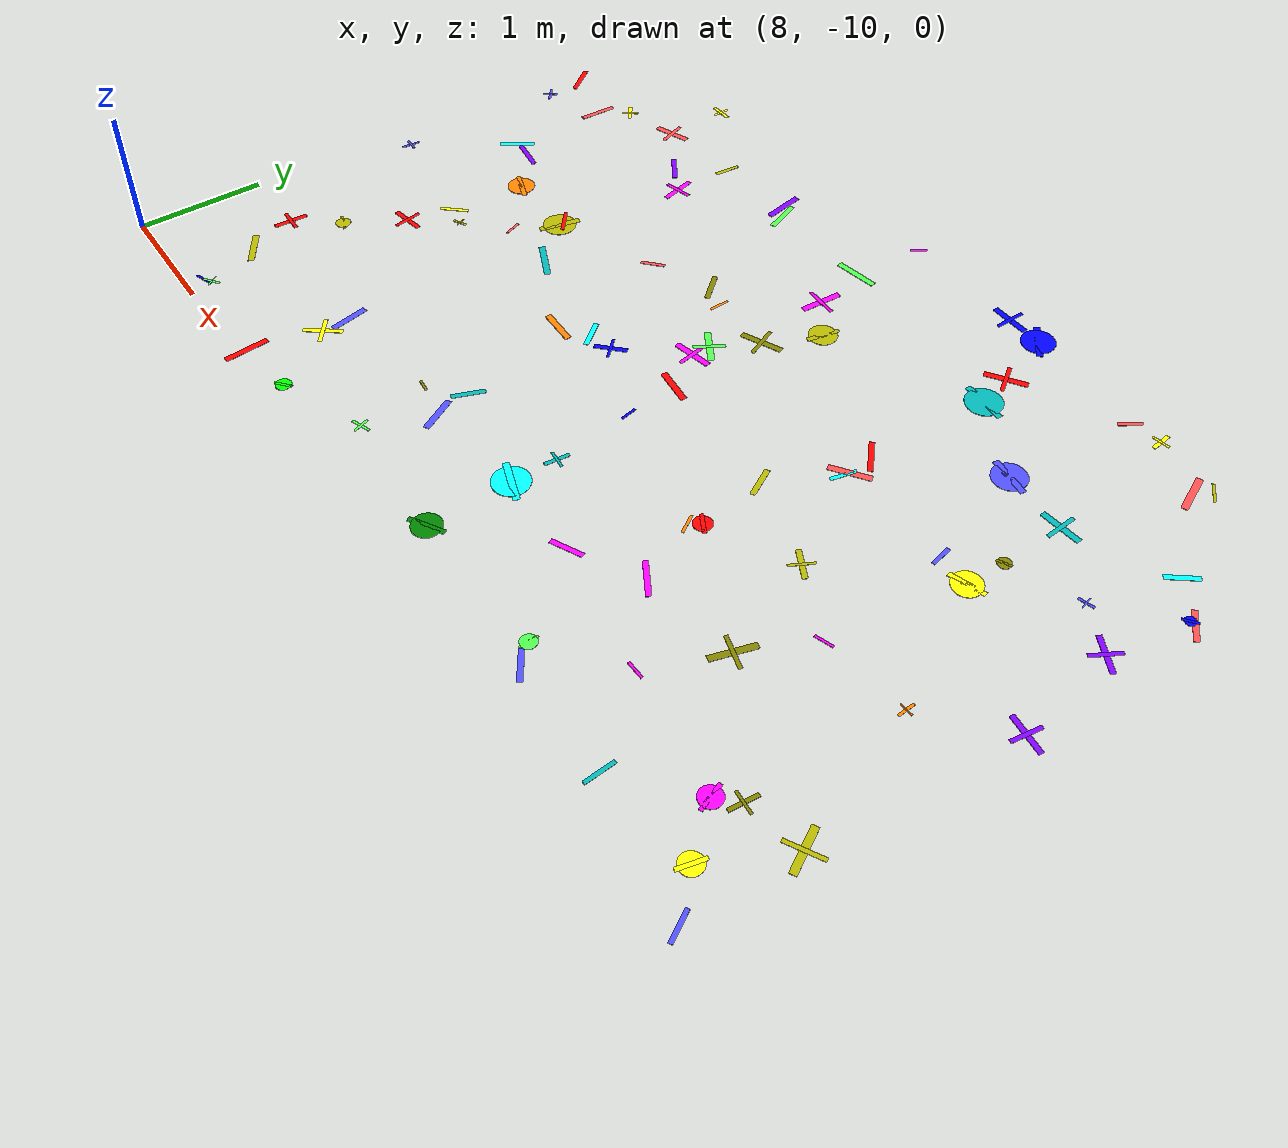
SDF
<sdf version="1.6">
 <world name="default">
  <model name="letter_H_1707">
   <static>true</static>
   <pose>8.22 -7.71 0.011 0 0 4.648</pose>
   <link name="link">
    <visual name="visual">
     <geometry><box><size>0.15 0.02 0.002</size></box></geometry>
     <material>
      <ambient>0.3 0.3 1.0 1</ambient>
      <diffuse>0.3 0.3 1.0 1</diffuse>
      <specular>0.1 0.1 0.1 1</specular>
     </material>
    </visual>
    <visual name="visual2">
     <pose>0 0 0.001 0 0 1.57</pose>
     <geometry><box><size>0.12 0.02 0.001</size></box></geometry>
     <material><ambient>0.3 0.3 1.0 1</ambient><diffuse>0.3 0.3 1.0 1</diffuse></material>
    </visual>
   </link>
  </model>
  <model name="letter_Z_1712">
   <static>true</static>
   <pose>8.19 -5.99 0.006 0 0 5.359</pose>
   <link name="link">
    <visual name="visual">
     <geometry><box><size>0.30 0.04 0.002</size></box></geometry>
     <material>
      <ambient>1.0 0.0 0.0 1</ambient>
      <diffuse>1.0 0.0 0.0 1</diffuse>
      <specular>0.1 0.1 0.1 1</specular>
     </material>
    </visual>
   </link>
  </model>
  <model name="letter_L_1713">
   <static>true</static>
   <pose>8.23 -6.33 0.005 0 0 2.461</pose>
   <link name="link">
    <visual name="visual">
     <geometry><box><size>0.15 0.02 0.002</size></box></geometry>
     <material>
      <ambient>0.3 0.3 1.0 1</ambient>
      <diffuse>0.3 0.3 1.0 1</diffuse>
      <specular>0.1 0.1 0.1 1</specular>
     </material>
    </visual>
    <visual name="visual2">
     <pose>0 0 0.001 0 0 1.57</pose>
     <geometry><box><size>0.12 0.02 0.001</size></box></geometry>
     <material><ambient>0.3 0.3 1.0 1</ambient><diffuse>0.3 0.3 1.0 1</diffuse></material>
    </visual>
   </link>
  </model>
  <model name="letter_R_1781">
   <static>true</static>
   <pose>8.89 -9.86 0.006 0 0 0.331</pose>
   <link name="link">
    <visual name="visual">
     <geometry><box><size>0.16 0.02 0.002</size></box></geometry>
     <material>
      <ambient>0.0 0.0 1.0 1</ambient>
      <diffuse>0.0 0.0 1.0 1</diffuse>
      <specular>0.1 0.1 0.1 1</specular>
     </material>
    </visual>
   </link>
  </model>
  <model name="letter_E_1782">
   <static>true</static>
   <pose>8.94 -9.82 0.006 0 0 3.768</pose>
   <link name="link">
    <visual name="visual">
     <geometry><box><size>0.14 0.02 0.002</size></box></geometry>
     <material>
      <ambient>0.3 1.0 0.3 1</ambient>
      <diffuse>0.3 1.0 0.3 1</diffuse>
      <specular>0.1 0.1 0.1 1</specular>
     </material>
    </visual>
    <visual name="visual2">
     <pose>0 0 0.001 0 0 1.57</pose>
     <geometry><box><size>0.11 0.01 0.001</size></box></geometry>
     <material><ambient>0.3 1.0 0.3 1</ambient><diffuse>0.3 1.0 0.3 1</diffuse></material>
    </visual>
   </link>
  </model>
  <model name="letter_L_1783">
   <static>true</static>
   <pose>8.60 -9.00 0.008 0 0 4.674</pose>
   <link name="link">
    <visual name="visual">
     <geometry><box><size>0.27 0.04 0.002</size></box></geometry>
     <material>
      <ambient>1.0 0.0 0.0 1</ambient>
      <diffuse>1.0 0.0 0.0 1</diffuse>
      <specular>0.1 0.1 0.1 1</specular>
     </material>
    </visual>
    <visual name="visual2">
     <pose>0 0 0.001 0 0 1.57</pose>
     <geometry><box><size>0.21 0.03 0.001</size></box></geometry>
     <material><ambient>1.0 0.0 0.0 1</ambient><diffuse>1.0 0.0 0.0 1</diffuse></material>
    </visual>
   </link>
  </model>
  <model name="letter_K_1784">
   <static>true</static>
   <pose>8.75 -9.39 0.010 0 0 2.585</pose>
   <link name="link">
    <visual name="visual">
     <geometry><box><size>0.32 0.05 0.002</size></box></geometry>
     <material>
      <ambient>0.7 0.7 0.0 1</ambient>
      <diffuse>0.7 0.7 0.0 1</diffuse>
      <specular>0.1 0.1 0.1 1</specular>
     </material>
    </visual>
   </link>
  </model>
  <model name="letter_O_1785">
   <static>true</static>
   <pose>8.86 -8.67 0.010 0 0 5.957</pose>
   <link name="link">
    <visual name="visual">
     <geometry><box><size>0.16 0.02 0.002</size></box></geometry>
     <material>
      <ambient>0.7 0.7 0.0 1</ambient>
      <diffuse>0.7 0.7 0.0 1</diffuse>
      <specular>0.1 0.1 0.1 1</specular>
     </material>
    </visual>
    <visual name="visual2">
     <geometry><cylinder><radius>0.06</radius><length>0.002</length></cylinder></geometry>
     <material><ambient>0.7 0.7 0.0 1</ambient><diffuse>0.7 0.7 0.0 1</diffuse></material>
    </visual>
   </link>
  </model>
  <model name="letter_E_1786">
   <static>true</static>
   <pose>9.11 -8.23 0.005 0 0 0.161</pose>
   <link name="link">
    <visual name="visual">
     <geometry><box><size>0.28 0.04 0.002</size></box></geometry>
     <material>
      <ambient>1.0 0.0 0.0 1</ambient>
      <diffuse>1.0 0.0 0.0 1</diffuse>
      <specular>0.1 0.1 0.1 1</specular>
     </material>
    </visual>
    <visual name="visual2">
     <pose>0 0 0.001 0 0 1.57</pose>
     <geometry><box><size>0.23 0.03 0.001</size></box></geometry>
     <material><ambient>1.0 0.0 0.0 1</ambient><diffuse>1.0 0.0 0.0 1</diffuse></material>
    </visual>
   </link>
  </model>
  <model name="letter_K_1787">
   <static>true</static>
   <pose>9.21 -7.86 0.011 0 0 3.971</pose>
   <link name="link">
    <visual name="visual">
     <geometry><box><size>0.23 0.03 0.002</size></box></geometry>
     <material>
      <ambient>1.0 1.0 0.0 1</ambient>
      <diffuse>1.0 1.0 0.0 1</diffuse>
      <specular>0.1 0.1 0.1 1</specular>
     </material>
    </visual>
   </link>
  </model>
  <model name="letter_A_1788">
   <static>true</static>
   <pose>9.39 -7.91 0.013 0 0 3.597</pose>
   <link name="link">
    <visual name="visual">
     <geometry><box><size>0.12 0.02 0.002</size></box></geometry>
     <material>
      <ambient>0.7 0.7 0.0 1</ambient>
      <diffuse>0.7 0.7 0.0 1</diffuse>
      <specular>0.1 0.1 0.1 1</specular>
     </material>
    </visual>
    <visual name="visual2">
     <pose>0 0 0.001 0 0 1.57</pose>
     <geometry><box><size>0.09 0.01 0.001</size></box></geometry>
     <material><ambient>0.7 0.7 0.0 1</ambient><diffuse>0.7 0.7 0.0 1</diffuse></material>
    </visual>
   </link>
  </model>
  <model name="letter_V_1789">
   <static>true</static>
   <pose>8.72 -6.97 0.011 0 0 0.968</pose>
   <link name="link">
    <visual name="visual">
     <geometry><box><size>0.29 0.04 0.002</size></box></geometry>
     <material>
      <ambient>0.0 1.0 1.0 1</ambient>
      <diffuse>0.0 1.0 1.0 1</diffuse>
      <specular>0.1 0.1 0.1 1</specular>
     </material>
    </visual>
   </link>
  </model>
  <model name="letter_Z_1790">
   <static>true</static>
   <pose>8.90 -6.98 0.009 0 0 6.127</pose>
   <link name="link">
    <visual name="visual">
     <geometry><box><size>0.29 0.04 0.002</size></box></geometry>
     <material>
      <ambient>0.5 0.0 1.0 1</ambient>
      <diffuse>0.5 0.0 1.0 1</diffuse>
      <specular>0.1 0.1 0.1 1</specular>
     </material>
    </visual>
   </link>
  </model>
  <model name="letter_G_1791">
   <static>true</static>
   <pose>9.24 -7.25 0.007 0 0 5.942</pose>
   <link name="link">
    <visual name="visual">
     <geometry><box><size>0.26 0.04 0.002</size></box></geometry>
     <material>
      <ambient>1.0 0.5 0.0 1</ambient>
      <diffuse>1.0 0.5 0.0 1</diffuse>
      <specular>0.1 0.1 0.1 1</specular>
     </material>
    </visual>
    <visual name="visual2">
     <geometry><cylinder><radius>0.11</radius><length>0.002</length></cylinder></geometry>
     <material><ambient>1.0 0.5 0.0 1</ambient><diffuse>1.0 0.5 0.0 1</diffuse></material>
    </visual>
   </link>
  </model>
  <model name="letter_H_1792">
   <static>true</static>
   <pose>8.88 -5.93 0.013 0 0 2.502</pose>
   <link name="link">
    <visual name="visual">
     <geometry><box><size>0.17 0.03 0.002</size></box></geometry>
     <material>
      <ambient>1.0 1.0 0.0 1</ambient>
      <diffuse>1.0 1.0 0.0 1</diffuse>
      <specular>0.1 0.1 0.1 1</specular>
     </material>
    </visual>
    <visual name="visual2">
     <pose>0 0 0.001 0 0 1.57</pose>
     <geometry><box><size>0.14 0.02 0.001</size></box></geometry>
     <material><ambient>1.0 1.0 0.0 1</ambient><diffuse>1.0 1.0 0.0 1</diffuse></material>
    </visual>
   </link>
  </model>
  <model name="letter_N_1793">
   <static>true</static>
   <pose>8.71 -6.15 0.007 0 0 1.536</pose>
   <link name="link">
    <visual name="visual">
     <geometry><box><size>0.30 0.04 0.002</size></box></geometry>
     <material>
      <ambient>1.0 0.3 0.3 1</ambient>
      <diffuse>1.0 0.3 0.3 1</diffuse>
      <specular>0.1 0.1 0.1 1</specular>
     </material>
    </visual>
   </link>
  </model>
  <model name="letter_H_1794">
   <static>true</static>
   <pose>9.34 -5.81 0.013 0 0 3.485</pose>
   <link name="link">
    <visual name="visual">
     <geometry><box><size>0.30 0.05 0.002</size></box></geometry>
     <material>
      <ambient>1.0 0.3 0.3 1</ambient>
      <diffuse>1.0 0.3 0.3 1</diffuse>
      <specular>0.1 0.1 0.1 1</specular>
     </material>
    </visual>
    <visual name="visual2">
     <pose>0 0 0.001 0 0 1.57</pose>
     <geometry><box><size>0.24 0.03 0.001</size></box></geometry>
     <material><ambient>1.0 0.3 0.3 1</ambient><diffuse>1.0 0.3 0.3 1</diffuse></material>
    </visual>
   </link>
  </model>
  <model name="letter_T_1796">
   <static>true</static>
   <pose>9.31 -5.27 0.005 0 0 3.167</pose>
   <link name="link">
    <visual name="visual">
     <geometry><box><size>0.18 0.03 0.002</size></box></geometry>
     <material>
      <ambient>1.0 1.0 0.0 1</ambient>
      <diffuse>1.0 1.0 0.0 1</diffuse>
      <specular>0.1 0.1 0.1 1</specular>
     </material>
    </visual>
    <visual name="visual2">
     <pose>0 0 0.001 0 0 1.57</pose>
     <geometry><box><size>0.14 0.02 0.001</size></box></geometry>
     <material><ambient>1.0 1.0 0.0 1</ambient><diffuse>1.0 1.0 0.0 1</diffuse></material>
    </visual>
   </link>
  </model>
  <model name="letter_C_1865">
   <static>true</static>
   <pose>10.30 -9.87 0.012 0 0 0.711</pose>
   <link name="link">
    <visual name="visual">
     <geometry><box><size>0.14 0.02 0.002</size></box></geometry>
     <material>
      <ambient>0.0 1.0 0.0 1</ambient>
      <diffuse>0.0 1.0 0.0 1</diffuse>
      <specular>0.1 0.1 0.1 1</specular>
     </material>
    </visual>
    <visual name="visual2">
     <geometry><cylinder><radius>0.06</radius><length>0.002</length></cylinder></geometry>
     <material><ambient>0.0 1.0 0.0 1</ambient><diffuse>0.0 1.0 0.0 1</diffuse></material>
    </visual>
   </link>
  </model>
  <model name="letter_W_1867">
   <static>true</static>
   <pose>9.81 -9.93 0.006 0 0 1.652</pose>
   <link name="link">
    <visual name="visual">
     <geometry><box><size>0.34 0.05 0.002</size></box></geometry>
     <material>
      <ambient>1.0 0.0 0.0 1</ambient>
      <diffuse>1.0 0.0 0.0 1</diffuse>
      <specular>0.1 0.1 0.1 1</specular>
     </material>
    </visual>
   </link>
  </model>
  <model name="letter_J_1868">
   <static>true</static>
   <pose>9.92 -9.16 0.003 0 0 4.913</pose>
   <link name="link">
    <visual name="visual">
     <geometry><box><size>0.30 0.05 0.002</size></box></geometry>
     <material>
      <ambient>0.3 0.3 1.0 1</ambient>
      <diffuse>0.3 0.3 1.0 1</diffuse>
      <specular>0.1 0.1 0.1 1</specular>
     </material>
    </visual>
   </link>
  </model>
  <model name="letter_F_1869">
   <static>true</static>
   <pose>9.93 -9.38 0.005 0 0 0.914</pose>
   <link name="link">
    <visual name="visual">
     <geometry><box><size>0.30 0.04 0.002</size></box></geometry>
     <material>
      <ambient>1.0 1.0 0.0 1</ambient>
      <diffuse>1.0 1.0 0.0 1</diffuse>
      <specular>0.1 0.1 0.1 1</specular>
     </material>
    </visual>
    <visual name="visual2">
     <pose>0 0 0.001 0 0 1.57</pose>
     <geometry><box><size>0.24 0.03 0.001</size></box></geometry>
     <material><ambient>1.0 1.0 0.0 1</ambient><diffuse>1.0 1.0 0.0 1</diffuse></material>
    </visual>
   </link>
  </model>
  <model name="letter_Y_1870">
   <static>true</static>
   <pose>10.17 -7.61 0.011 0 0 5.850</pose>
   <link name="link">
    <visual name="visual">
     <geometry><box><size>0.34 0.05 0.002</size></box></geometry>
     <material>
      <ambient>0.0 0.7 0.7 1</ambient>
      <diffuse>0.0 0.7 0.7 1</diffuse>
      <specular>0.1 0.1 0.1 1</specular>
     </material>
    </visual>
   </link>
  </model>
  <model name="letter_K_1871">
   <static>true</static>
   <pose>9.68 -7.60 0.005 0 0 5.067</pose>
   <link name="link">
    <visual name="visual">
     <geometry><box><size>0.14 0.02 0.002</size></box></geometry>
     <material>
      <ambient>1.0 0.3 0.3 1</ambient>
      <diffuse>1.0 0.3 0.3 1</diffuse>
      <specular>0.1 0.1 0.1 1</specular>
     </material>
    </visual>
   </link>
  </model>
  <model name="letter_C_1872">
   <static>true</static>
   <pose>9.85 -7.27 0.006 0 0 4.472</pose>
   <link name="link">
    <visual name="visual">
     <geometry><box><size>0.33 0.05 0.002</size></box></geometry>
     <material>
      <ambient>0.7 0.7 0.0 1</ambient>
      <diffuse>0.7 0.7 0.0 1</diffuse>
      <specular>0.1 0.1 0.1 1</specular>
     </material>
    </visual>
    <visual name="visual2">
     <geometry><cylinder><radius>0.13</radius><length>0.002</length></cylinder></geometry>
     <material><ambient>0.7 0.7 0.0 1</ambient><diffuse>0.7 0.7 0.0 1</diffuse></material>
    </visual>
   </link>
  </model>
  <model name="letter_P_1873">
   <static>true</static>
   <pose>9.84 -7.22 0.012 0 0 5.585</pose>
   <link name="link">
    <visual name="visual">
     <geometry><box><size>0.22 0.03 0.002</size></box></geometry>
     <material>
      <ambient>1.0 0.0 0.0 1</ambient>
      <diffuse>1.0 0.0 0.0 1</diffuse>
      <specular>0.1 0.1 0.1 1</specular>
     </material>
    </visual>
   </link>
  </model>
  <model name="letter_T_1874">
   <static>true</static>
   <pose>10.01 -6.23 0.007 0 0 1.801</pose>
   <link name="link">
    <visual name="visual">
     <geometry><box><size>0.29 0.04 0.002</size></box></geometry>
     <material>
      <ambient>1.0 0.0 1.0 1</ambient>
      <diffuse>1.0 0.0 1.0 1</diffuse>
      <specular>0.1 0.1 0.1 1</specular>
     </material>
    </visual>
    <visual name="visual2">
     <pose>0 0 0.001 0 0 1.57</pose>
     <geometry><box><size>0.23 0.03 0.001</size></box></geometry>
     <material><ambient>1.0 0.0 1.0 1</ambient><diffuse>1.0 0.0 1.0 1</diffuse></material>
    </visual>
   </link>
  </model>
  <model name="letter_B_1875">
   <static>true</static>
   <pose>10.02 -5.74 0.008 0 0 1.483</pose>
   <link name="link">
    <visual name="visual">
     <geometry><box><size>0.21 0.03 0.002</size></box></geometry>
     <material>
      <ambient>0.7 0.7 0.0 1</ambient>
      <diffuse>0.7 0.7 0.0 1</diffuse>
      <specular>0.1 0.1 0.1 1</specular>
     </material>
    </visual>
   </link>
  </model>
  <model name="letter_X_1876">
   <static>true</static>
   <pose>9.75 -6.08 0.005 0 0 5.706</pose>
   <link name="link">
    <visual name="visual">
     <geometry><box><size>0.26 0.04 0.002</size></box></geometry>
     <material>
      <ambient>0.5 0.0 1.0 1</ambient>
      <diffuse>0.5 0.0 1.0 1</diffuse>
      <specular>0.1 0.1 0.1 1</specular>
     </material>
    </visual>
   </link>
  </model>
  <model name="letter_L_1943">
   <static>true</static>
   <pose>10.98 -9.61 0.013 0 0 3.486</pose>
   <link name="link">
    <visual name="visual">
     <geometry><box><size>0.16 0.02 0.002</size></box></geometry>
     <material>
      <ambient>0.3 1.0 0.3 1</ambient>
      <diffuse>0.3 1.0 0.3 1</diffuse>
      <specular>0.1 0.1 0.1 1</specular>
     </material>
    </visual>
    <visual name="visual2">
     <pose>0 0 0.001 0 0 1.57</pose>
     <geometry><box><size>0.13 0.02 0.001</size></box></geometry>
     <material><ambient>0.3 1.0 0.3 1</ambient><diffuse>0.3 1.0 0.3 1</diffuse></material>
    </visual>
   </link>
  </model>
  <model name="letter_P_1945">
   <static>true</static>
   <pose>11.18 -9.12 0.010 0 0 2.075</pose>
   <link name="link">
    <visual name="visual">
     <geometry><box><size>0.30 0.05 0.002</size></box></geometry>
     <material>
      <ambient>0.3 0.3 1.0 1</ambient>
      <diffuse>0.3 0.3 1.0 1</diffuse>
      <specular>0.1 0.1 0.1 1</specular>
     </material>
    </visual>
   </link>
  </model>
  <model name="letter_K_1946">
   <static>true</static>
   <pose>10.87 -9.06 0.009 0 0 3.020</pose>
   <link name="link">
    <visual name="visual">
     <geometry><box><size>0.11 0.02 0.002</size></box></geometry>
     <material>
      <ambient>0.5 0.5 0.0 1</ambient>
      <diffuse>0.5 0.5 0.0 1</diffuse>
      <specular>0.1 0.1 0.1 1</specular>
     </material>
    </visual>
   </link>
  </model>
  <model name="letter_D_1947">
   <static>true</static>
   <pose>11.12 -8.84 0.008 0 0 4.353</pose>
   <link name="link">
    <visual name="visual">
     <geometry><box><size>0.25 0.04 0.002</size></box></geometry>
     <material>
      <ambient>0.0 0.7 0.7 1</ambient>
      <diffuse>0.0 0.7 0.7 1</diffuse>
      <specular>0.1 0.1 0.1 1</specular>
     </material>
    </visual>
   </link>
  </model>
  <model name="letter_E_1948">
   <static>true</static>
   <pose>11.29 -7.75 0.006 0 0 0.762</pose>
   <link name="link">
    <visual name="visual">
     <geometry><box><size>0.25 0.04 0.002</size></box></geometry>
     <material>
      <ambient>0.0 0.0 1.0 1</ambient>
      <diffuse>0.0 0.0 1.0 1</diffuse>
      <specular>0.1 0.1 0.1 1</specular>
     </material>
    </visual>
    <visual name="visual2">
     <pose>0 0 0.001 0 0 1.57</pose>
     <geometry><box><size>0.20 0.02 0.001</size></box></geometry>
     <material><ambient>0.0 0.0 1.0 1</ambient><diffuse>0.0 0.0 1.0 1</diffuse></material>
    </visual>
   </link>
  </model>
  <model name="letter_S_1949">
   <static>true</static>
   <pose>10.88 -7.94 0.009 0 0 6.238</pose>
   <link name="link">
    <visual name="visual">
     <geometry><box><size>0.30 0.05 0.002</size></box></geometry>
     <material>
      <ambient>1.0 0.5 0.0 1</ambient>
      <diffuse>1.0 0.5 0.0 1</diffuse>
      <specular>0.1 0.1 0.1 1</specular>
     </material>
    </visual>
   </link>
  </model>
  <model name="letter_W_1950">
   <static>true</static>
   <pose>11.08 -7.78 0.004 0 0 2.232</pose>
   <link name="link">
    <visual name="visual">
     <geometry><box><size>0.24 0.04 0.002</size></box></geometry>
     <material>
      <ambient>0.0 1.0 1.0 1</ambient>
      <diffuse>0.0 1.0 1.0 1</diffuse>
      <specular>0.1 0.1 0.1 1</specular>
     </material>
    </visual>
   </link>
  </model>
  <model name="letter_K_1951">
   <static>true</static>
   <pose>11.36 -6.82 0.013 0 0 4.744</pose>
   <link name="link">
    <visual name="visual">
     <geometry><box><size>0.16 0.02 0.002</size></box></geometry>
     <material>
      <ambient>1.0 0.5 0.0 1</ambient>
      <diffuse>1.0 0.5 0.0 1</diffuse>
      <specular>0.1 0.1 0.1 1</specular>
     </material>
    </visual>
   </link>
  </model>
  <model name="letter_J_1952">
   <static>true</static>
   <pose>11.15 -6.74 0.004 0 0 5.403</pose>
   <link name="link">
    <visual name="visual">
     <geometry><box><size>0.26 0.04 0.002</size></box></geometry>
     <material>
      <ambient>0.5 0.5 0.0 1</ambient>
      <diffuse>0.5 0.5 0.0 1</diffuse>
      <specular>0.1 0.1 0.1 1</specular>
     </material>
    </visual>
   </link>
  </model>
  <model name="letter_N_1953">
   <static>true</static>
   <pose>10.67 -6.94 0.003 0 0 0.732</pose>
   <link name="link">
    <visual name="visual">
     <geometry><box><size>0.19 0.03 0.002</size></box></geometry>
     <material>
      <ambient>1.0 0.3 0.3 1</ambient>
      <diffuse>1.0 0.3 0.3 1</diffuse>
      <specular>0.1 0.1 0.1 1</specular>
     </material>
    </visual>
   </link>
  </model>
  <model name="letter_Y_1954">
   <static>true</static>
   <pose>10.77 -5.75 0.009 0 0 1.932</pose>
   <link name="link">
    <visual name="visual">
     <geometry><box><size>0.30 0.04 0.002</size></box></geometry>
     <material>
      <ambient>0.3 1.0 0.3 1</ambient>
      <diffuse>0.3 1.0 0.3 1</diffuse>
      <specular>0.1 0.1 0.1 1</specular>
     </material>
    </visual>
   </link>
  </model>
  <model name="letter_P_1955">
   <static>true</static>
   <pose>10.68 -5.67 0.012 0 0 4.892</pose>
   <link name="link">
    <visual name="visual">
     <geometry><box><size>0.33 0.05 0.002</size></box></geometry>
     <material>
      <ambient>0.5 0.0 1.0 1</ambient>
      <diffuse>0.5 0.0 1.0 1</diffuse>
      <specular>0.1 0.1 0.1 1</specular>
     </material>
    </visual>
   </link>
  </model>
  <model name="letter_G_2018">
   <static>true</static>
   <pose>12.03 -9.68 0.004 0 0 0.528</pose>
   <link name="link">
    <visual name="visual">
     <geometry><box><size>0.28 0.04 0.002</size></box></geometry>
     <material>
      <ambient>0.0 0.5 0.0 1</ambient>
      <diffuse>0.0 0.5 0.0 1</diffuse>
      <specular>0.1 0.1 0.1 1</specular>
     </material>
    </visual>
    <visual name="visual2">
     <geometry><cylinder><radius>0.11</radius><length>0.002</length></cylinder></geometry>
     <material><ambient>0.0 0.5 0.0 1</ambient><diffuse>0.0 0.5 0.0 1</diffuse></material>
    </visual>
   </link>
  </model>
  <model name="letter_A_2020">
   <static>true</static>
   <pose>12.01 -8.67 0.005 0 0 1.461</pose>
   <link name="link">
    <visual name="visual">
     <geometry><box><size>0.19 0.03 0.002</size></box></geometry>
     <material>
      <ambient>0.0 0.7 0.7 1</ambient>
      <diffuse>0.0 0.7 0.7 1</diffuse>
      <specular>0.1 0.1 0.1 1</specular>
     </material>
    </visual>
    <visual name="visual2">
     <pose>0 0 0.001 0 0 1.57</pose>
     <geometry><box><size>0.15 0.02 0.001</size></box></geometry>
     <material><ambient>0.0 0.7 0.7 1</ambient><diffuse>0.0 0.7 0.7 1</diffuse></material>
    </visual>
   </link>
  </model>
  <model name="letter_G_2021">
   <static>true</static>
   <pose>12.01 -9.03 0.009 0 0 5.950</pose>
   <link name="link">
    <visual name="visual">
     <geometry><box><size>0.35 0.05 0.002</size></box></geometry>
     <material>
      <ambient>0.0 1.0 1.0 1</ambient>
      <diffuse>0.0 1.0 1.0 1</diffuse>
      <specular>0.1 0.1 0.1 1</specular>
     </material>
    </visual>
    <visual name="visual2">
     <geometry><cylinder><radius>0.14</radius><length>0.002</length></cylinder></geometry>
     <material><ambient>0.0 1.0 1.0 1</ambient><diffuse>0.0 1.0 1.0 1</diffuse></material>
    </visual>
   </link>
  </model>
  <model name="letter_W_2022">
   <static>true</static>
   <pose>11.88 -7.61 0.012 0 0 3.016</pose>
   <link name="link">
    <visual name="visual">
     <geometry><box><size>0.30 0.05 0.002</size></box></geometry>
     <material>
      <ambient>1.0 0.0 0.0 1</ambient>
      <diffuse>1.0 0.0 0.0 1</diffuse>
      <specular>0.1 0.1 0.1 1</specular>
     </material>
    </visual>
   </link>
  </model>
  <model name="letter_X_2023">
   <static>true</static>
   <pose>11.93 -8.03 0.012 0 0 1.765</pose>
   <link name="link">
    <visual name="visual">
     <geometry><box><size>0.13 0.02 0.002</size></box></geometry>
     <material>
      <ambient>0.0 0.0 1.0 1</ambient>
      <diffuse>0.0 0.0 1.0 1</diffuse>
      <specular>0.1 0.1 0.1 1</specular>
     </material>
    </visual>
   </link>
  </model>
  <model name="letter_F_2024">
   <static>true</static>
   <pose>11.86 -6.81 0.006 0 0 3.549</pose>
   <link name="link">
    <visual name="visual">
     <geometry><box><size>0.33 0.05 0.002</size></box></geometry>
     <material>
      <ambient>0.5 0.5 0.0 1</ambient>
      <diffuse>0.5 0.5 0.0 1</diffuse>
      <specular>0.1 0.1 0.1 1</specular>
     </material>
    </visual>
    <visual name="visual2">
     <pose>0 0 0.001 0 0 1.57</pose>
     <geometry><box><size>0.27 0.03 0.001</size></box></geometry>
     <material><ambient>0.5 0.5 0.0 1</ambient><diffuse>0.5 0.5 0.0 1</diffuse></material>
    </visual>
   </link>
  </model>
  <model name="letter_T_2025">
   <static>true</static>
   <pose>11.68 -7.30 0.004 0 0 0.183</pose>
   <link name="link">
    <visual name="visual">
     <geometry><box><size>0.31 0.05 0.002</size></box></geometry>
     <material>
      <ambient>1.0 0.0 1.0 1</ambient>
      <diffuse>1.0 0.0 1.0 1</diffuse>
      <specular>0.1 0.1 0.1 1</specular>
     </material>
    </visual>
    <visual name="visual2">
     <pose>0 0 0.001 0 0 1.57</pose>
     <geometry><box><size>0.25 0.03 0.001</size></box></geometry>
     <material><ambient>1.0 0.0 1.0 1</ambient><diffuse>1.0 0.0 1.0 1</diffuse></material>
    </visual>
   </link>
  </model>
  <model name="letter_A_2026">
   <static>true</static>
   <pose>11.68 -7.15 0.006 0 0 5.743</pose>
   <link name="link">
    <visual name="visual">
     <geometry><box><size>0.30 0.05 0.002</size></box></geometry>
     <material>
      <ambient>0.3 1.0 0.3 1</ambient>
      <diffuse>0.3 1.0 0.3 1</diffuse>
      <specular>0.1 0.1 0.1 1</specular>
     </material>
    </visual>
    <visual name="visual2">
     <pose>0 0 0.001 0 0 1.57</pose>
     <geometry><box><size>0.24 0.03 0.001</size></box></geometry>
     <material><ambient>0.3 1.0 0.3 1</ambient><diffuse>0.3 1.0 0.3 1</diffuse></material>
    </visual>
   </link>
  </model>
  <model name="letter_R_2027">
   <static>true</static>
   <pose>11.66 -5.74 0.010 0 0 0.155</pose>
   <link name="link">
    <visual name="visual">
     <geometry><box><size>0.34 0.05 0.002</size></box></geometry>
     <material>
      <ambient>0.3 1.0 0.3 1</ambient>
      <diffuse>0.3 1.0 0.3 1</diffuse>
      <specular>0.1 0.1 0.1 1</specular>
     </material>
    </visual>
   </link>
  </model>
  <model name="letter_I_2028">
   <static>true</static>
   <pose>11.76 -6.17 0.011 0 0 4.656</pose>
   <link name="link">
    <visual name="visual">
     <geometry><box><size>0.33 0.05 0.002</size></box></geometry>
     <material>
      <ambient>1.0 0.0 1.0 1</ambient>
      <diffuse>1.0 0.0 1.0 1</diffuse>
      <specular>0.1 0.1 0.1 1</specular>
     </material>
    </visual>
    <visual name="visual2">
     <pose>0 0 0.001 0 0 1.57</pose>
     <geometry><box><size>0.26 0.03 0.001</size></box></geometry>
     <material><ambient>1.0 0.0 1.0 1</ambient><diffuse>1.0 0.0 1.0 1</diffuse></material>
    </visual>
   </link>
  </model>
  <model name="letter_G_2029">
   <static>true</static>
   <pose>12.05 -6.39 0.003 0 0 1.371</pose>
   <link name="link">
    <visual name="visual">
     <geometry><box><size>0.26 0.04 0.002</size></box></geometry>
     <material>
      <ambient>0.7 0.7 0.0 1</ambient>
      <diffuse>0.7 0.7 0.0 1</diffuse>
      <specular>0.1 0.1 0.1 1</specular>
     </material>
    </visual>
    <visual name="visual2">
     <geometry><cylinder><radius>0.11</radius><length>0.002</length></cylinder></geometry>
     <material><ambient>0.7 0.7 0.0 1</ambient><diffuse>0.7 0.7 0.0 1</diffuse></material>
    </visual>
   </link>
  </model>
  <model name="letter_V_2030">
   <static>true</static>
   <pose>11.71 -5.15 0.007 0 0 0.951</pose>
   <link name="link">
    <visual name="visual">
     <geometry><box><size>0.13 0.02 0.002</size></box></geometry>
     <material>
      <ambient>1.0 0.0 1.0 1</ambient>
      <diffuse>1.0 0.0 1.0 1</diffuse>
      <specular>0.1 0.1 0.1 1</specular>
     </material>
    </visual>
   </link>
  </model>
  <model name="letter_R_2098">
   <static>true</static>
   <pose>13.32 -9.76 0.008 0 0 5.684</pose>
   <link name="link">
    <visual name="visual">
     <geometry><box><size>0.25 0.04 0.002</size></box></geometry>
     <material>
      <ambient>0.3 0.3 1.0 1</ambient>
      <diffuse>0.3 0.3 1.0 1</diffuse>
      <specular>0.1 0.1 0.1 1</specular>
     </material>
    </visual>
   </link>
  </model>
  <model name="letter_G_2099">
   <static>true</static>
   <pose>13.20 -9.63 0.009 0 0 4.776</pose>
   <link name="link">
    <visual name="visual">
     <geometry><box><size>0.14 0.02 0.002</size></box></geometry>
     <material>
      <ambient>0.3 1.0 0.3 1</ambient>
      <diffuse>0.3 1.0 0.3 1</diffuse>
      <specular>0.1 0.1 0.1 1</specular>
     </material>
    </visual>
    <visual name="visual2">
     <geometry><cylinder><radius>0.06</radius><length>0.002</length></cylinder></geometry>
     <material><ambient>0.3 1.0 0.3 1</ambient><diffuse>0.3 1.0 0.3 1</diffuse></material>
    </visual>
   </link>
  </model>
  <model name="letter_Y_2100">
   <static>true</static>
   <pose>13.20 -8.76 0.004 0 0 2.607</pose>
   <link name="link">
    <visual name="visual">
     <geometry><box><size>0.29 0.04 0.002</size></box></geometry>
     <material>
      <ambient>1.0 0.0 1.0 1</ambient>
      <diffuse>1.0 0.0 1.0 1</diffuse>
      <specular>0.1 0.1 0.1 1</specular>
     </material>
    </visual>
   </link>
  </model>
  <model name="letter_N_2101">
   <static>true</static>
   <pose>12.71 -9.04 0.010 0 0 0.443</pose>
   <link name="link">
    <visual name="visual">
     <geometry><box><size>0.25 0.04 0.002</size></box></geometry>
     <material>
      <ambient>1.0 0.0 1.0 1</ambient>
      <diffuse>1.0 0.0 1.0 1</diffuse>
      <specular>0.1 0.1 0.1 1</specular>
     </material>
    </visual>
   </link>
  </model>
  <model name="letter_G_2102">
   <static>true</static>
   <pose>13.03 -8.20 0.003 0 0 2.633</pose>
   <link name="link">
    <visual name="visual">
     <geometry><box><size>0.17 0.03 0.002</size></box></geometry>
     <material>
      <ambient>1.0 0.0 0.0 1</ambient>
      <diffuse>1.0 0.0 0.0 1</diffuse>
      <specular>0.1 0.1 0.1 1</specular>
     </material>
    </visual>
    <visual name="visual2">
     <geometry><cylinder><radius>0.07</radius><length>0.002</length></cylinder></geometry>
     <material><ambient>1.0 0.0 0.0 1</ambient><diffuse>1.0 0.0 0.0 1</diffuse></material>
    </visual>
   </link>
  </model>
  <model name="letter_N_2103">
   <static>true</static>
   <pose>12.98 -8.29 0.012 0 0 5.266</pose>
   <link name="link">
    <visual name="visual">
     <geometry><box><size>0.16 0.02 0.002</size></box></geometry>
     <material>
      <ambient>1.0 0.5 0.0 1</ambient>
      <diffuse>1.0 0.5 0.0 1</diffuse>
      <specular>0.1 0.1 0.1 1</specular>
     </material>
    </visual>
   </link>
  </model>
  <model name="letter_Y_2104">
   <static>true</static>
   <pose>12.95 -7.67 0.003 0 0 2.068</pose>
   <link name="link">
    <visual name="visual">
     <geometry><box><size>0.25 0.04 0.002</size></box></geometry>
     <material>
      <ambient>0.7 0.7 0.0 1</ambient>
      <diffuse>0.7 0.7 0.0 1</diffuse>
      <specular>0.1 0.1 0.1 1</specular>
     </material>
    </visual>
   </link>
  </model>
  <model name="letter_S_2105">
   <static>true</static>
   <pose>13.23 -7.13 0.012 0 0 0.604</pose>
   <link name="link">
    <visual name="visual">
     <geometry><box><size>0.31 0.05 0.002</size></box></geometry>
     <material>
      <ambient>1.0 0.3 0.3 1</ambient>
      <diffuse>1.0 0.3 0.3 1</diffuse>
      <specular>0.1 0.1 0.1 1</specular>
     </material>
    </visual>
   </link>
  </model>
  <model name="letter_J_2106">
   <static>true</static>
   <pose>13.22 -7.18 0.012 0 0 4.498</pose>
   <link name="link">
    <visual name="visual">
     <geometry><box><size>0.20 0.03 0.002</size></box></geometry>
     <material>
      <ambient>0.0 1.0 1.0 1</ambient>
      <diffuse>0.0 1.0 1.0 1</diffuse>
      <specular>0.1 0.1 0.1 1</specular>
     </material>
    </visual>
   </link>
  </model>
  <model name="letter_K_2107">
   <static>true</static>
   <pose>13.19 -6.91 0.004 0 0 5.530</pose>
   <link name="link">
    <visual name="visual">
     <geometry><box><size>0.28 0.04 0.002</size></box></geometry>
     <material>
      <ambient>1.0 0.0 0.0 1</ambient>
      <diffuse>1.0 0.0 0.0 1</diffuse>
      <specular>0.1 0.1 0.1 1</specular>
     </material>
    </visual>
   </link>
  </model>
  <model name="letter_Q_2108">
   <static>true</static>
   <pose>13.24 -5.92 0.012 0 0 3.066</pose>
   <link name="link">
    <visual name="visual">
     <geometry><box><size>0.35 0.05 0.002</size></box></geometry>
     <material>
      <ambient>0.0 0.7 0.7 1</ambient>
      <diffuse>0.0 0.7 0.7 1</diffuse>
      <specular>0.1 0.1 0.1 1</specular>
     </material>
    </visual>
    <visual name="visual2">
     <geometry><cylinder><radius>0.14</radius><length>0.002</length></cylinder></geometry>
     <material><ambient>0.0 0.7 0.7 1</ambient><diffuse>0.0 0.7 0.7 1</diffuse></material>
    </visual>
   </link>
  </model>
  <model name="letter_T_2109">
   <static>true</static>
   <pose>13.16 -5.63 0.013 0 0 3.721</pose>
   <link name="link">
    <visual name="visual">
     <geometry><box><size>0.32 0.05 0.002</size></box></geometry>
     <material>
      <ambient>1.0 0.0 0.0 1</ambient>
      <diffuse>1.0 0.0 0.0 1</diffuse>
      <specular>0.1 0.1 0.1 1</specular>
     </material>
    </visual>
    <visual name="visual2">
     <pose>0 0 0.001 0 0 1.57</pose>
     <geometry><box><size>0.26 0.03 0.001</size></box></geometry>
     <material><ambient>1.0 0.0 0.0 1</ambient><diffuse>1.0 0.0 0.0 1</diffuse></material>
    </visual>
   </link>
  </model>
  <model name="letter_O_2110">
   <static>true</static>
   <pose>13.00 -5.15 0.007 0 0 5.567</pose>
   <link name="link">
    <visual name="visual">
     <geometry><box><size>0.32 0.05 0.002</size></box></geometry>
     <material>
      <ambient>0.0 0.0 1.0 1</ambient>
      <diffuse>0.0 0.0 1.0 1</diffuse>
      <specular>0.1 0.1 0.1 1</specular>
     </material>
    </visual>
    <visual name="visual2">
     <geometry><cylinder><radius>0.13</radius><length>0.002</length></cylinder></geometry>
     <material><ambient>0.0 0.0 1.0 1</ambient><diffuse>0.0 0.0 1.0 1</diffuse></material>
    </visual>
   </link>
  </model>
  <model name="letter_A_2112">
   <static>true</static>
   <pose>12.71 -5.15 0.010 0 0 0.008</pose>
   <link name="link">
    <visual name="visual">
     <geometry><box><size>0.31 0.05 0.002</size></box></geometry>
     <material>
      <ambient>0.0 0.0 1.0 1</ambient>
      <diffuse>0.0 0.0 1.0 1</diffuse>
      <specular>0.1 0.1 0.1 1</specular>
     </material>
    </visual>
    <visual name="visual2">
     <pose>0 0 0.001 0 0 1.57</pose>
     <geometry><box><size>0.25 0.03 0.001</size></box></geometry>
     <material><ambient>0.0 0.0 1.0 1</ambient><diffuse>0.0 0.0 1.0 1</diffuse></material>
    </visual>
   </link>
  </model>
  <model name="letter_D_2176">
   <static>true</static>
   <pose>14.20 -9.78 0.010 0 0 1.641</pose>
   <link name="link">
    <visual name="visual">
     <geometry><box><size>0.23 0.03 0.002</size></box></geometry>
     <material>
      <ambient>0.0 0.7 0.7 1</ambient>
      <diffuse>0.0 0.7 0.7 1</diffuse>
      <specular>0.1 0.1 0.1 1</specular>
     </material>
    </visual>
   </link>
  </model>
  <model name="letter_W_2177">
   <static>true</static>
   <pose>13.74 -9.22 0.013 0 0 0.015</pose>
   <link name="link">
    <visual name="visual">
     <geometry><box><size>0.14 0.02 0.002</size></box></geometry>
     <material>
      <ambient>1.0 0.0 1.0 1</ambient>
      <diffuse>1.0 0.0 1.0 1</diffuse>
      <specular>0.1 0.1 0.1 1</specular>
     </material>
    </visual>
   </link>
  </model>
  <model name="letter_T_2178">
   <static>true</static>
   <pose>13.96 -8.66 0.006 0 0 4.423</pose>
   <link name="link">
    <visual name="visual">
     <geometry><box><size>0.33 0.05 0.002</size></box></geometry>
     <material>
      <ambient>0.5 0.5 0.0 1</ambient>
      <diffuse>0.5 0.5 0.0 1</diffuse>
      <specular>0.1 0.1 0.1 1</specular>
     </material>
    </visual>
    <visual name="visual2">
     <pose>0 0 0.001 0 0 1.57</pose>
     <geometry><box><size>0.26 0.03 0.001</size></box></geometry>
     <material><ambient>0.5 0.5 0.0 1</ambient><diffuse>0.5 0.5 0.0 1</diffuse></material>
    </visual>
   </link>
  </model>
  <model name="letter_H_2179">
   <static>true</static>
   <pose>13.66 -7.89 0.006 0 0 5.788</pose>
   <link name="link">
    <visual name="visual">
     <geometry><box><size>0.24 0.04 0.002</size></box></geometry>
     <material>
      <ambient>0.7 0.7 0.0 1</ambient>
      <diffuse>0.7 0.7 0.0 1</diffuse>
      <specular>0.1 0.1 0.1 1</specular>
     </material>
    </visual>
    <visual name="visual2">
     <pose>0 0 0.001 0 0 1.57</pose>
     <geometry><box><size>0.19 0.02 0.001</size></box></geometry>
     <material><ambient>0.7 0.7 0.0 1</ambient><diffuse>0.7 0.7 0.0 1</diffuse></material>
    </visual>
   </link>
  </model>
  <model name="letter_X_2180">
   <static>true</static>
   <pose>14.21 -8.16 0.009 0 0 0.304</pose>
   <link name="link">
    <visual name="visual">
     <geometry><box><size>0.14 0.02 0.002</size></box></geometry>
     <material>
      <ambient>1.0 0.0 1.0 1</ambient>
      <diffuse>1.0 0.0 1.0 1</diffuse>
      <specular>0.1 0.1 0.1 1</specular>
     </material>
    </visual>
   </link>
  </model>
  <model name="letter_B_2181">
   <static>true</static>
   <pose>14.11 -7.12 0.005 0 0 4.918</pose>
   <link name="link">
    <visual name="visual">
     <geometry><box><size>0.17 0.03 0.002</size></box></geometry>
     <material>
      <ambient>0.3 0.3 1.0 1</ambient>
      <diffuse>0.3 0.3 1.0 1</diffuse>
      <specular>0.1 0.1 0.1 1</specular>
     </material>
    </visual>
   </link>
  </model>
  <model name="letter_C_2182">
   <static>true</static>
   <pose>14.37 -7.14 0.003 0 0 3.440</pose>
   <link name="link">
    <visual name="visual">
     <geometry><box><size>0.27 0.04 0.002</size></box></geometry>
     <material>
      <ambient>1.0 1.0 0.0 1</ambient>
      <diffuse>1.0 1.0 0.0 1</diffuse>
      <specular>0.1 0.1 0.1 1</specular>
     </material>
    </visual>
    <visual name="visual2">
     <geometry><cylinder><radius>0.11</radius><length>0.002</length></cylinder></geometry>
     <material><ambient>1.0 1.0 0.0 1</ambient><diffuse>1.0 1.0 0.0 1</diffuse></material>
    </visual>
   </link>
  </model>
  <model name="letter_C_2183">
   <static>true</static>
   <pose>14.38 -6.83 0.006 0 0 0.466</pose>
   <link name="link">
    <visual name="visual">
     <geometry><box><size>0.11 0.02 0.002</size></box></geometry>
     <material>
      <ambient>0.5 0.5 0.0 1</ambient>
      <diffuse>0.5 0.5 0.0 1</diffuse>
      <specular>0.1 0.1 0.1 1</specular>
     </material>
    </visual>
    <visual name="visual2">
     <geometry><cylinder><radius>0.05</radius><length>0.002</length></cylinder></geometry>
     <material><ambient>0.5 0.5 0.0 1</ambient><diffuse>0.5 0.5 0.0 1</diffuse></material>
    </visual>
   </link>
  </model>
  <model name="letter_O_2184">
   <static>true</static>
   <pose>13.86 -6.28 0.012 0 0 6.127</pose>
   <link name="link">
    <visual name="visual">
     <geometry><box><size>0.32 0.05 0.002</size></box></geometry>
     <material>
      <ambient>0.3 0.3 1.0 1</ambient>
      <diffuse>0.3 0.3 1.0 1</diffuse>
      <specular>0.1 0.1 0.1 1</specular>
     </material>
    </visual>
    <visual name="visual2">
     <geometry><cylinder><radius>0.13</radius><length>0.002</length></cylinder></geometry>
     <material><ambient>0.3 0.3 1.0 1</ambient><diffuse>0.3 0.3 1.0 1</diffuse></material>
    </visual>
   </link>
  </model>
  <model name="letter_T_2185">
   <static>true</static>
   <pose>14.37 -6.32 0.008 0 0 0.067</pose>
   <link name="link">
    <visual name="visual">
     <geometry><box><size>0.31 0.05 0.002</size></box></geometry>
     <material>
      <ambient>0.0 0.7 0.7 1</ambient>
      <diffuse>0.0 0.7 0.7 1</diffuse>
      <specular>0.1 0.1 0.1 1</specular>
     </material>
    </visual>
    <visual name="visual2">
     <pose>0 0 0.001 0 0 1.57</pose>
     <geometry><box><size>0.25 0.03 0.001</size></box></geometry>
     <material><ambient>0.0 0.7 0.7 1</ambient><diffuse>0.0 0.7 0.7 1</diffuse></material>
    </visual>
   </link>
  </model>
  <model name="letter_J_2186">
   <static>true</static>
   <pose>13.97 -5.24 0.010 0 0 0.996</pose>
   <link name="link">
    <visual name="visual">
     <geometry><box><size>0.18 0.03 0.002</size></box></geometry>
     <material>
      <ambient>1.0 0.3 0.3 1</ambient>
      <diffuse>1.0 0.3 0.3 1</diffuse>
      <specular>0.1 0.1 0.1 1</specular>
     </material>
    </visual>
   </link>
  </model>
  <model name="letter_E_2187">
   <static>true</static>
   <pose>14.21 -5.20 0.010 0 0 1.692</pose>
   <link name="link">
    <visual name="visual">
     <geometry><box><size>0.17 0.03 0.002</size></box></geometry>
     <material>
      <ambient>1.0 1.0 0.0 1</ambient>
      <diffuse>1.0 1.0 0.0 1</diffuse>
      <specular>0.1 0.1 0.1 1</specular>
     </material>
    </visual>
    <visual name="visual2">
     <pose>0 0 0.001 0 0 1.57</pose>
     <geometry><box><size>0.14 0.02 0.001</size></box></geometry>
     <material><ambient>1.0 1.0 0.0 1</ambient><diffuse>1.0 1.0 0.0 1</diffuse></material>
    </visual>
   </link>
  </model>
  <model name="letter_D_2255">
   <static>true</static>
   <pose>15.20 -9.95 0.009 0 0 5.225</pose>
   <link name="link">
    <visual name="visual">
     <geometry><box><size>0.22 0.03 0.002</size></box></geometry>
     <material>
      <ambient>0.3 0.3 1.0 1</ambient>
      <diffuse>0.3 0.3 1.0 1</diffuse>
      <specular>0.1 0.1 0.1 1</specular>
     </material>
    </visual>
   </link>
  </model>
  <model name="letter_G_2256">
   <static>true</static>
   <pose>14.95 -9.69 0.011 0 0 4.470</pose>
   <link name="link">
    <visual name="visual">
     <geometry><box><size>0.20 0.03 0.002</size></box></geometry>
     <material>
      <ambient>1.0 1.0 0.0 1</ambient>
      <diffuse>1.0 1.0 0.0 1</diffuse>
      <specular>0.1 0.1 0.1 1</specular>
     </material>
    </visual>
    <visual name="visual2">
     <geometry><cylinder><radius>0.08</radius><length>0.002</length></cylinder></geometry>
     <material><ambient>1.0 1.0 0.0 1</ambient><diffuse>1.0 1.0 0.0 1</diffuse></material>
    </visual>
   </link>
  </model>
  <model name="letter_C_2258">
   <static>true</static>
   <pose>14.68 -9.36 0.007 0 0 1.922</pose>
   <link name="link">
    <visual name="visual">
     <geometry><box><size>0.21 0.03 0.002</size></box></geometry>
     <material>
      <ambient>1.0 0.0 1.0 1</ambient>
      <diffuse>1.0 0.0 1.0 1</diffuse>
      <specular>0.1 0.1 0.1 1</specular>
     </material>
    </visual>
    <visual name="visual2">
     <geometry><cylinder><radius>0.08</radius><length>0.002</length></cylinder></geometry>
     <material><ambient>1.0 0.0 1.0 1</ambient><diffuse>1.0 0.0 1.0 1</diffuse></material>
    </visual>
   </link>
  </model>
  <model name="letter_L_2259">
   <static>true</static>
   <pose>14.81 -9.23 0.005 0 0 1.473</pose>
   <link name="link">
    <visual name="visual">
     <geometry><box><size>0.21 0.03 0.002</size></box></geometry>
     <material>
      <ambient>0.5 0.5 0.0 1</ambient>
      <diffuse>0.5 0.5 0.0 1</diffuse>
      <specular>0.1 0.1 0.1 1</specular>
     </material>
    </visual>
    <visual name="visual2">
     <pose>0 0 0.001 0 0 1.57</pose>
     <geometry><box><size>0.17 0.02 0.001</size></box></geometry>
     <material><ambient>0.5 0.5 0.0 1</ambient><diffuse>0.5 0.5 0.0 1</diffuse></material>
    </visual>
   </link>
  </model>
  <model name="letter_E_2260">
   <static>true</static>
   <pose>15.23 -9.14 0.011 0 0 2.070</pose>
   <link name="link">
    <visual name="visual">
     <geometry><box><size>0.33 0.05 0.002</size></box></geometry>
     <material>
      <ambient>0.7 0.7 0.0 1</ambient>
      <diffuse>0.7 0.7 0.0 1</diffuse>
      <specular>0.1 0.1 0.1 1</specular>
     </material>
    </visual>
    <visual name="visual2">
     <pose>0 0 0.001 0 0 1.57</pose>
     <geometry><box><size>0.27 0.03 0.001</size></box></geometry>
     <material><ambient>0.7 0.7 0.0 1</ambient><diffuse>0.7 0.7 0.0 1</diffuse></material>
    </visual>
   </link>
  </model>
  <model name="letter_A_2261">
   <static>true</static>
   <pose>14.86 -8.08 0.004 0 0 1.630</pose>
   <link name="link">
    <visual name="visual">
     <geometry><box><size>0.13 0.02 0.002</size></box></geometry>
     <material>
      <ambient>1.0 0.5 0.0 1</ambient>
      <diffuse>1.0 0.5 0.0 1</diffuse>
      <specular>0.1 0.1 0.1 1</specular>
     </material>
    </visual>
    <visual name="visual2">
     <pose>0 0 0.001 0 0 1.57</pose>
     <geometry><box><size>0.10 0.01 0.001</size></box></geometry>
     <material><ambient>1.0 0.5 0.0 1</ambient><diffuse>1.0 0.5 0.0 1</diffuse></material>
    </visual>
   </link>
  </model>
  <model name="letter_T_2262">
   <static>true</static>
   <pose>15.38 -7.63 0.011 0 0 2.987</pose>
   <link name="link">
    <visual name="visual">
     <geometry><box><size>0.29 0.04 0.002</size></box></geometry>
     <material>
      <ambient>0.5 0.0 1.0 1</ambient>
      <diffuse>0.5 0.0 1.0 1</diffuse>
      <specular>0.1 0.1 0.1 1</specular>
     </material>
    </visual>
    <visual name="visual2">
     <pose>0 0 0.001 0 0 1.57</pose>
     <geometry><box><size>0.23 0.03 0.001</size></box></geometry>
     <material><ambient>0.5 0.0 1.0 1</ambient><diffuse>0.5 0.0 1.0 1</diffuse></material>
    </visual>
   </link>
  </model>
  <model name="letter_E_2263">
   <static>true</static>
   <pose>14.90 -6.64 0.007 0 0 3.393</pose>
   <link name="link">
    <visual name="visual">
     <geometry><box><size>0.12 0.02 0.002</size></box></geometry>
     <material>
      <ambient>0.3 0.3 1.0 1</ambient>
      <diffuse>0.3 0.3 1.0 1</diffuse>
      <specular>0.1 0.1 0.1 1</specular>
     </material>
    </visual>
    <visual name="visual2">
     <pose>0 0 0.001 0 0 1.57</pose>
     <geometry><box><size>0.10 0.01 0.001</size></box></geometry>
     <material><ambient>0.3 0.3 1.0 1</ambient><diffuse>0.3 0.3 1.0 1</diffuse></material>
    </visual>
   </link>
  </model>
  <model name="letter_F_2264">
   <static>true</static>
   <pose>15.24 -6.83 0.004 0 0 5.770</pose>
   <link name="link">
    <visual name="visual">
     <geometry><box><size>0.29 0.04 0.002</size></box></geometry>
     <material>
      <ambient>0.5 0.0 1.0 1</ambient>
      <diffuse>0.5 0.0 1.0 1</diffuse>
      <specular>0.1 0.1 0.1 1</specular>
     </material>
    </visual>
    <visual name="visual2">
     <pose>0 0 0.001 0 0 1.57</pose>
     <geometry><box><size>0.23 0.03 0.001</size></box></geometry>
     <material><ambient>0.5 0.0 1.0 1</ambient><diffuse>0.5 0.0 1.0 1</diffuse></material>
    </visual>
   </link>
  </model>
  <model name="letter_Q_2265">
   <static>true</static>
   <pose>15.36 -6.22 0.007 0 0 3.779</pose>
   <link name="link">
    <visual name="visual">
     <geometry><box><size>0.11 0.02 0.002</size></box></geometry>
     <material>
      <ambient>0.0 0.0 1.0 1</ambient>
      <diffuse>0.0 0.0 1.0 1</diffuse>
      <specular>0.1 0.1 0.1 1</specular>
     </material>
    </visual>
    <visual name="visual2">
     <geometry><cylinder><radius>0.04</radius><length>0.002</length></cylinder></geometry>
     <material><ambient>0.0 0.0 1.0 1</ambient><diffuse>0.0 0.0 1.0 1</diffuse></material>
    </visual>
   </link>
  </model>
  <model name="letter_W_2266">
   <static>true</static>
   <pose>15.10 -6.00 0.009 0 0 0.901</pose>
   <link name="link">
    <visual name="visual">
     <geometry><box><size>0.24 0.04 0.002</size></box></geometry>
     <material>
      <ambient>0.0 1.0 1.0 1</ambient>
      <diffuse>0.0 1.0 1.0 1</diffuse>
      <specular>0.1 0.1 0.1 1</specular>
     </material>
    </visual>
   </link>
  </model>
  <model name="letter_W_2267">
   <static>true</static>
   <pose>15.40 -6.22 0.003 0 0 5.483</pose>
   <link name="link">
    <visual name="visual">
     <geometry><box><size>0.25 0.04 0.002</size></box></geometry>
     <material>
      <ambient>1.0 0.3 0.3 1</ambient>
      <diffuse>1.0 0.3 0.3 1</diffuse>
      <specular>0.1 0.1 0.1 1</specular>
     </material>
    </visual>
   </link>
  </model>
  <model name="letter_W_2268">
   <static>true</static>
   <pose>14.73 -5.27 0.008 0 0 5.484</pose>
   <link name="link">
    <visual name="visual">
     <geometry><box><size>0.17 0.02 0.002</size></box></geometry>
     <material>
      <ambient>0.7 0.7 0.0 1</ambient>
      <diffuse>0.7 0.7 0.0 1</diffuse>
      <specular>0.1 0.1 0.1 1</specular>
     </material>
    </visual>
   </link>
  </model>
  <model name="letter_B_2269">
   <static>true</static>
   <pose>14.65 -5.39 0.004 0 0 1.968</pose>
   <link name="link">
    <visual name="visual">
     <geometry><box><size>0.32 0.05 0.002</size></box></geometry>
     <material>
      <ambient>1.0 0.3 0.3 1</ambient>
      <diffuse>1.0 0.3 0.3 1</diffuse>
      <specular>0.1 0.1 0.1 1</specular>
     </material>
    </visual>
   </link>
  </model>
 </world>
</sdf>
